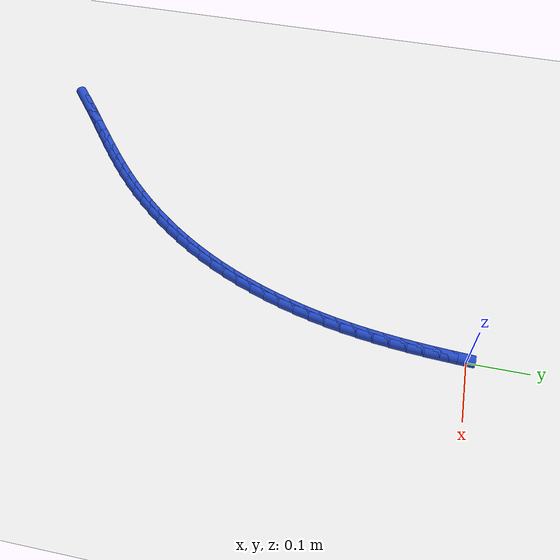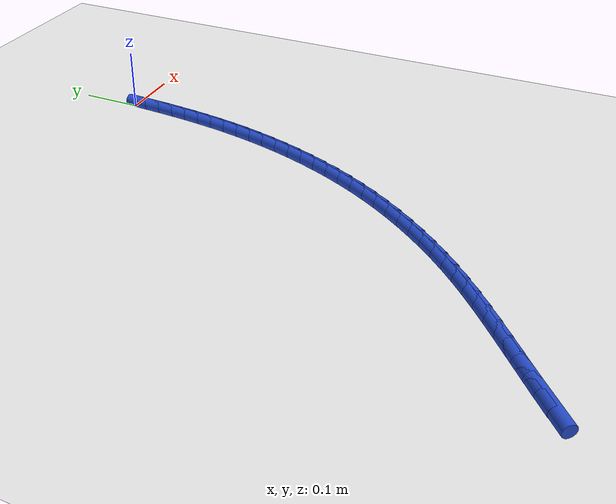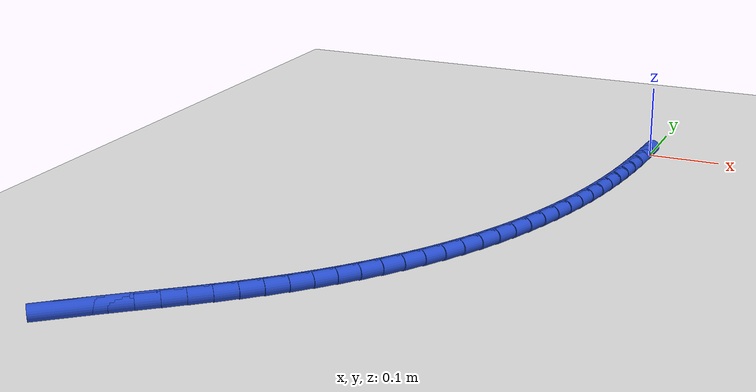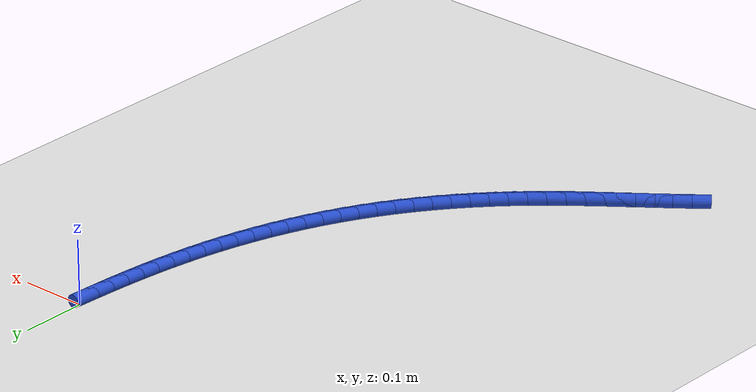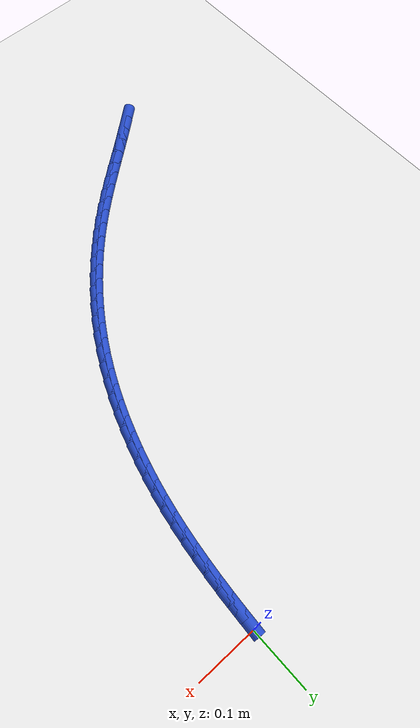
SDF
<sdf version="1.6">
 <world name="default">
  <model name="ground_plane">
   <static>1</static>
   <link name="link">
    <collision name="collision">
     <geometry><plane><normal>0 0 1</normal><size>100 100</size></plane></geometry>
     <surface><friction><ode><mu>100</mu><mu2>50</mu2></ode></friction></surface>
    </collision>
    <visual name="visual">
     <cast_shadows>0</cast_shadows>
     <geometry><plane><normal>0 0 1</normal><size>100 100</size></plane></geometry>
     <material>
      <script><uri>file://media/materials/scripts/gazebo.material</uri><name>Gazebo/WhiteGlow</name></script>
     </material>
    </visual>
   </link>
  </model>
  <model name="line">
   <link name="link_236">
    <pose>-0.42812119568837886 -0.7839939145625209 0.01 0 1.57 0.6829449006644899</pose>
    <collision name="collision">
     <geometry><cylinder><radius>0.01</radius><length>0.08</length></cylinder></geometry>
    </collision>
    <visual name="visual">
     <material>
      <script><name>Gazebo/Blue</name><uri>file://media/materials/scripts/gazebo.material</uri></script>
     </material>
     <geometry><cylinder><radius>0.01</radius><length>0.08</length></cylinder></geometry>
    </visual>
   </link>
   <link name="link_237">
    <pose>-0.40696872390006994 -0.7667854547135973 0.01 0 1.57 0.6718654102911197</pose>
    <collision name="collision">
     <geometry><cylinder><radius>0.01</radius><length>0.08</length></cylinder></geometry>
    </collision>
    <visual name="visual">
     <material>
      <script><name>Gazebo/Blue</name><uri>file://media/materials/scripts/gazebo.material</uri></script>
     </material>
     <geometry><cylinder><radius>0.01</radius><length>0.08</length></cylinder></geometry>
    </visual>
   </link>
   <link name="link_238">
    <pose>-0.38548471375122956 -0.7496993301876949 0.01 0 1.57 0.6672466472850517</pose>
    <collision name="collision">
     <geometry><cylinder><radius>0.01</radius><length>0.08</length></cylinder></geometry>
    </collision>
    <visual name="visual">
     <material>
      <script><name>Gazebo/Blue</name><uri>file://media/materials/scripts/gazebo.material</uri></script>
     </material>
     <geometry><cylinder><radius>0.01</radius><length>0.08</length></cylinder></geometry>
    </visual>
   </link>
   <link name="link_239">
    <pose>-0.3638132425633726 -0.7326269270905161 0.01 0 1.57 0.6689696123884663</pose>
    <collision name="collision">
     <geometry><cylinder><radius>0.01</radius><length>0.08</length></cylinder></geometry>
    </collision>
    <visual name="visual">
     <material>
      <script><name>Gazebo/Blue</name><uri>file://media/materials/scripts/gazebo.material</uri></script>
     </material>
     <geometry><cylinder><radius>0.01</radius><length>0.08</length></cylinder></geometry>
    </visual>
   </link>
   <link name="link_240">
    <pose>-0.3420983876580102 -0.7154596315277597 0.01 0 1.57 0.676978930174071</pose>
    <collision name="collision">
     <geometry><cylinder><radius>0.01</radius><length>0.08</length></cylinder></geometry>
    </collision>
    <visual name="visual">
     <material>
      <script><name>Gazebo/Blue</name><uri>file://media/materials/scripts/gazebo.material</uri></script>
     </material>
     <geometry><cylinder><radius>0.01</radius><length>0.08</length></cylinder></geometry>
    </visual>
   </link>
   <link name="link_241">
    <pose>-0.3204842263566571 -0.6980888296051269 0.01 0 1.57 0.6912788636895101</pose>
    <collision name="collision">
     <geometry><cylinder><radius>0.01</radius><length>0.08</length></cylinder></geometry>
    </collision>
    <visual name="visual">
     <material>
      <script><name>Gazebo/Blue</name><uri>file://media/materials/scripts/gazebo.material</uri></script>
     </material>
     <geometry><cylinder><radius>0.01</radius><length>0.08</length></cylinder></geometry>
    </visual>
   </link>
   <link name="link_242">
    <pose>-0.29911483598082467 -0.6804059074283169 0.01 0 1.57 0.7119232799200432</pose>
    <collision name="collision">
     <geometry><cylinder><radius>0.01</radius><length>0.08</length></cylinder></geometry>
    </collision>
    <visual name="visual">
     <material>
      <script><name>Gazebo/Blue</name><uri>file://media/materials/scripts/gazebo.material</uri></script>
     </material>
     <geometry><cylinder><radius>0.01</radius><length>0.08</length></cylinder></geometry>
    </visual>
   </link>
   <link name="link_243">
    <pose>-0.27813429385202754 -0.6623022511030312 0.01 0 1.57 0.738997526707917</pose>
    <collision name="collision">
     <geometry><cylinder><radius>0.01</radius><length>0.08</length></cylinder></geometry>
    </collision>
    <visual name="visual">
     <material>
      <script><name>Gazebo/Blue</name><uri>file://media/materials/scripts/gazebo.material</uri></script>
     </material>
     <geometry><cylinder><radius>0.01</radius><length>0.08</length></cylinder></geometry>
    </visual>
   </link>
   <link name="link_244">
    <pose>-0.25768664957279763 -0.643669275016386 0.01 0 1.57 0.7712118660043806</pose>
    <collision name="collision">
     <geometry><cylinder><radius>0.01</radius><length>0.08</length></cylinder></geometry>
    </collision>
    <visual name="visual">
     <material>
      <script><name>Gazebo/Blue</name><uri>file://media/materials/scripts/gazebo.material</uri></script>
     </material>
     <geometry><cylinder><radius>0.01</radius><length>0.08</length></cylinder></geometry>
    </visual>
   </link>
   <link name="link_245">
    <pose>-0.23788918950446555 -0.6244256998416793 0.01 0 1.57 0.8046575252328189</pose>
    <collision name="collision">
     <geometry><cylinder><radius>0.01</radius><length>0.08</length></cylinder></geometry>
    </collision>
    <visual name="visual">
     <material>
      <script><name>Gazebo/Blue</name><uri>file://media/materials/scripts/gazebo.material</uri></script>
     </material>
     <geometry><cylinder><radius>0.01</radius><length>0.08</length></cylinder></geometry>
    </visual>
   </link>
   <link name="link_246">
    <pose>-0.21878250228278917 -0.6045685002285368 0.01 0 1.57 0.8386553423400016</pose>
    <collision name="collision">
     <geometry><cylinder><radius>0.01</radius><length>0.08</length></cylinder></geometry>
    </collision>
    <visual name="visual">
     <material>
      <script><name>Gazebo/Blue</name><uri>file://media/materials/scripts/gazebo.material</uri></script>
     </material>
     <geometry><cylinder><radius>0.01</radius><length>0.08</length></cylinder></geometry>
    </visual>
   </link>
   <link name="link_247">
    <pose>-0.20039352374682246 -0.5841085806481301 0.01 0 1.57 0.8732271123961196</pose>
    <collision name="collision">
     <geometry><cylinder><radius>0.01</radius><length>0.08</length></cylinder></geometry>
    </collision>
    <visual name="visual">
     <material>
      <script><name>Gazebo/Blue</name><uri>file://media/materials/scripts/gazebo.material</uri></script>
     </material>
     <geometry><cylinder><radius>0.01</radius><length>0.08</length></cylinder></geometry>
    </visual>
   </link>
   <link name="link_248">
    <pose>-0.1827491897356211 -0.5630568455716327 0.01 0 1.57 0.9083904480935402</pose>
    <collision name="collision">
     <geometry><cylinder><radius>0.01</radius><length>0.08</length></cylinder></geometry>
    </collision>
    <visual name="visual">
     <material>
      <script><name>Gazebo/Blue</name><uri>file://media/materials/scripts/gazebo.material</uri></script>
     </material>
     <geometry><cylinder><radius>0.01</radius><length>0.08</length></cylinder></geometry>
    </visual>
   </link>
   <link name="link_249">
    <pose>-0.1658764360882384 -0.541424199470215 0.01 0 1.57 0.9441581903126883</pose>
    <collision name="collision">
     <geometry><cylinder><radius>0.01</radius><length>0.08</length></cylinder></geometry>
    </collision>
    <visual name="visual">
     <material>
      <script><name>Gazebo/Blue</name><uri>file://media/materials/scripts/gazebo.material</uri></script>
     </material>
     <geometry><cylinder><radius>0.01</radius><length>0.08</length></cylinder></geometry>
    </visual>
   </link>
   <link name="link_250">
    <pose>-0.14980219864372984 -0.5192215468150504 0.01 0 1.57 0.9805378014145192</pose>
    <collision name="collision">
     <geometry><cylinder><radius>0.01</radius><length>0.08</length></cylinder></geometry>
    </collision>
    <visual name="visual">
     <material>
      <script><name>Gazebo/Blue</name><uri>file://media/materials/scripts/gazebo.material</uri></script>
     </material>
     <geometry><cylinder><radius>0.01</radius><length>0.08</length></cylinder></geometry>
    </visual>
   </link>
   <link name="link_251">
    <pose>-0.13455341324114906 -0.49645979207730967 0.01 0 1.57 1.0175307572215038</pose>
    <collision name="collision">
     <geometry><cylinder><radius>0.01</radius><length>0.08</length></cylinder></geometry>
    </collision>
    <visual name="visual">
     <material>
      <script><name>Gazebo/Blue</name><uri>file://media/materials/scripts/gazebo.material</uri></script>
     </material>
     <geometry><cylinder><radius>0.01</radius><length>0.08</length></cylinder></geometry>
    </visual>
   </link>
   <link name="link_252">
    <pose>-0.12015701571955135 -0.47314983972816627 0.01 0 1.57 1.0551319576685618</pose>
    <collision name="collision">
     <geometry><cylinder><radius>0.01</radius><length>0.08</length></cylinder></geometry>
    </collision>
    <visual name="visual">
     <material>
      <script><name>Gazebo/Blue</name><uri>file://media/materials/scripts/gazebo.material</uri></script>
     </material>
     <geometry><cylinder><radius>0.01</radius><length>0.08</length></cylinder></geometry>
    </visual>
   </link>
   <link name="link_253">
    <pose>-0.1066399419179904 -0.4493025942387907 0.01 0 1.57 1.0930133014849446</pose>
    <collision name="collision">
     <geometry><cylinder><radius>0.01</radius><length>0.08</length></cylinder></geometry>
    </collision>
    <visual name="visual">
     <material>
      <script><name>Gazebo/Blue</name><uri>file://media/materials/scripts/gazebo.material</uri></script>
     </material>
     <geometry><cylinder><radius>0.01</radius><length>0.08</length></cylinder></geometry>
    </visual>
   </link>
   <link name="link_254">
    <pose>-0.09402290990682763 -0.4249358044171422 0.01 0 1.57 1.1298467685513935</pose>
    <collision name="collision">
     <geometry><cylinder><radius>0.01</radius><length>0.08</length></cylinder></geometry>
    </collision>
    <visual name="visual">
     <material>
      <script><name>Gazebo/Blue</name><uri>file://media/materials/scripts/gazebo.material</uri></script>
     </material>
     <geometry><cylinder><radius>0.01</radius><length>0.08</length></cylinder></geometry>
    </visual>
   </link>
   <link name="link_255">
    <pose>-0.0823001590507506 -0.40009636605109966 0.01 0 1.57 1.1653473150629026</pose>
    <collision name="collision">
     <geometry><cylinder><radius>0.01</radius><length>0.08</length></cylinder></geometry>
    </collision>
    <visual name="visual">
     <material>
      <script><name>Gazebo/Blue</name><uri>file://media/materials/scripts/gazebo.material</uri></script>
     </material>
     <geometry><cylinder><radius>0.01</radius><length>0.08</length></cylinder></geometry>
    </visual>
   </link>
   <link name="link_256">
    <pose>-0.07145888148771717 -0.37483893230832627 0.01 0 1.57 1.1996007184747577</pose>
    <collision name="collision">
     <geometry><cylinder><radius>0.01</radius><length>0.08</length></cylinder></geometry>
    </collision>
    <visual name="visual">
     <material>
      <script><name>Gazebo/Blue</name><uri>file://media/materials/scripts/gazebo.material</uri></script>
     </material>
     <geometry><cylinder><radius>0.01</radius><length>0.08</length></cylinder></geometry>
    </visual>
   </link>
   <link name="link_257">
    <pose>-0.06148626929544447 -0.34921815642279336 0.01 0 1.57 1.232698376581956</pose>
    <collision name="collision">
     <geometry><cylinder><radius>0.01</radius><length>0.08</length></cylinder></geometry>
    </collision>
    <visual name="visual">
     <material>
      <script><name>Gazebo/Blue</name><uri>file://media/materials/scripts/gazebo.material</uri></script>
     </material>
     <geometry><cylinder><radius>0.01</radius><length>0.08</length></cylinder></geometry>
    </visual>
   </link>
   <link name="link_258">
    <pose>-0.052369514551649676 -0.32328869162847224 0.01 0 1.57 1.2647357864131406</pose>
    <collision name="collision">
     <geometry><cylinder><radius>0.01</radius><length>0.08</length></cylinder></geometry>
    </collision>
    <visual name="visual">
     <material>
      <script><name>Gazebo/Blue</name><uri>file://media/materials/scripts/gazebo.material</uri></script>
     </material>
     <geometry><cylinder><radius>0.01</radius><length>0.08</length></cylinder></geometry>
    </visual>
   </link>
   <link name="link_259">
    <pose>-0.044095809334050814 -0.2971051911593365 0.01 0 1.57 1.295811432979622</pose>
    <collision name="collision">
     <geometry><cylinder><radius>0.01</radius><length>0.08</length></cylinder></geometry>
    </collision>
    <visual name="visual">
     <material>
      <script><name>Gazebo/Blue</name><uri>file://media/materials/scripts/gazebo.material</uri></script>
     </material>
     <geometry><cylinder><radius>0.01</radius><length>0.08</length></cylinder></geometry>
    </visual>
   </link>
   <link name="link_260">
    <pose>-0.036652345720364826 -0.2707223082493568 0.01 0 1.57 1.3260260468694844</pose>
    <collision name="collision">
     <geometry><cylinder><radius>0.01</radius><length>0.08</length></cylinder></geometry>
    </collision>
    <visual name="visual">
     <material>
      <script><name>Gazebo/Blue</name><uri>file://media/materials/scripts/gazebo.material</uri></script>
     </material>
     <geometry><cylinder><radius>0.01</radius><length>0.08</length></cylinder></geometry>
    </visual>
   </link>
   <link name="link_261">
    <pose>-0.030026315788309627 -0.24419469613250663 0.01 0 1.57 1.355459337759761</pose>
    <collision name="collision">
     <geometry><cylinder><radius>0.01</radius><length>0.08</length></cylinder></geometry>
    </collision>
    <visual name="visual">
     <material>
      <script><name>Gazebo/Blue</name><uri>file://media/materials/scripts/gazebo.material</uri></script>
     </material>
     <geometry><cylinder><radius>0.01</radius><length>0.08</length></cylinder></geometry>
    </visual>
   </link>
   <link name="link_262">
    <pose>-0.024203940657297616 -0.21757548328418255 0.01 0 1.57 1.3836128134464756</pose>
    <collision name="collision">
     <geometry><cylinder><radius>0.01</radius><length>0.08</length></cylinder></geometry>
    </collision>
    <visual name="visual">
     <material>
      <script><name>Gazebo/Blue</name><uri>file://media/materials/scripts/gazebo.material</uri></script>
     </material>
     <geometry><cylinder><radius>0.01</radius><length>0.08</length></cylinder></geometry>
    </visual>
   </link>
   <link name="link_263">
    <pose>-0.01914797569687596 -0.19088094839629516 0.01 0 1.57 1.409802499938269</pose>
    <collision name="collision">
     <geometry><cylinder><radius>0.01</radius><length>0.08</length></cylinder></geometry>
    </collision>
    <visual name="visual">
     <material>
      <script><name>Gazebo/Blue</name><uri>file://media/materials/scripts/gazebo.material</uri></script>
     </material>
     <geometry><cylinder><radius>0.01</radius><length>0.08</length></cylinder></geometry>
    </visual>
   </link>
   <link name="link_264">
    <pose>-0.014797062853901106 -0.16408950329477082 0.01 0 1.57 1.4338627198708074</pose>
    <collision name="collision">
     <geometry><cylinder><radius>0.01</radius><length>0.08</length></cylinder></geometry>
    </collision>
    <visual name="visual">
     <material>
      <script><name>Gazebo/Blue</name><uri>file://media/materials/scripts/gazebo.material</uri></script>
     </material>
     <geometry><cylinder><radius>0.01</radius><length>0.08</length></cylinder></geometry>
    </visual>
   </link>
   <link name="link_265">
    <pose>-0.011088743552258353 -0.13717783158319585 0.01 0 1.57 1.4556852322249652</pose>
    <collision name="collision">
     <geometry><cylinder><radius>0.01</radius><length>0.08</length></cylinder></geometry>
    </collision>
    <visual name="visual">
     <material>
      <script><name>Gazebo/Blue</name><uri>file://media/materials/scripts/gazebo.material</uri></script>
     </material>
     <geometry><cylinder><radius>0.01</radius><length>0.08</length></cylinder></geometry>
    </visual>
   </link>
   <link name="link_266">
    <pose>-0.007960559215832498 -0.11012261686515284 0.01 0 1.57 1.475191944654457</pose>
    <collision name="collision">
     <geometry><cylinder><radius>0.01</radius><length>0.08</length></cylinder></geometry>
    </collision>
    <visual name="visual">
     <material>
      <script><name>Gazebo/Blue</name><uri>file://media/materials/scripts/gazebo.material</uri></script>
     </material>
     <geometry><cylinder><radius>0.01</radius><length>0.08</length></cylinder></geometry>
    </visual>
   </link>
   <link name="link_267">
    <pose>-0.005350051268508769 -0.08290054274422791 0.01 0 1.57 1.492332673598121</pose>
    <collision name="collision">
     <geometry><cylinder><radius>0.01</radius><length>0.08</length></cylinder></geometry>
    </collision>
    <visual name="visual">
     <material>
      <script><name>Gazebo/Blue</name><uri>file://media/materials/scripts/gazebo.material</uri></script>
     </material>
     <geometry><cylinder><radius>0.01</radius><length>0.08</length></cylinder></geometry>
    </visual>
   </link>
   <link name="link_268">
    <pose>-0.003194761134172094 -0.05548829282400464 0.01 0 1.57 1.5070823724283355</pose>
    <collision name="collision">
     <geometry><cylinder><radius>0.01</radius><length>0.08</length></cylinder></geometry>
    </collision>
    <visual name="visual">
     <material>
      <script><name>Gazebo/Blue</name><uri>file://media/materials/scripts/gazebo.material</uri></script>
     </material>
     <geometry><cylinder><radius>0.01</radius><length>0.08</length></cylinder></geometry>
    </visual>
   </link>
   <link name="link_269">
    <pose>-0.0014322302367074566 -0.027862550708066584 0.01 0 1.57 1.519438115483142</pose>
    <collision name="collision">
     <geometry><cylinder><radius>0.01</radius><length>0.08</length></cylinder></geometry>
    </collision>
    <visual name="visual">
     <material>
      <script><name>Gazebo/Blue</name><uri>file://media/materials/scripts/gazebo.material</uri></script>
     </material>
     <geometry><cylinder><radius>0.01</radius><length>0.08</length></cylinder></geometry>
    </visual>
   </link>
  </model>
 </world>
</sdf>
